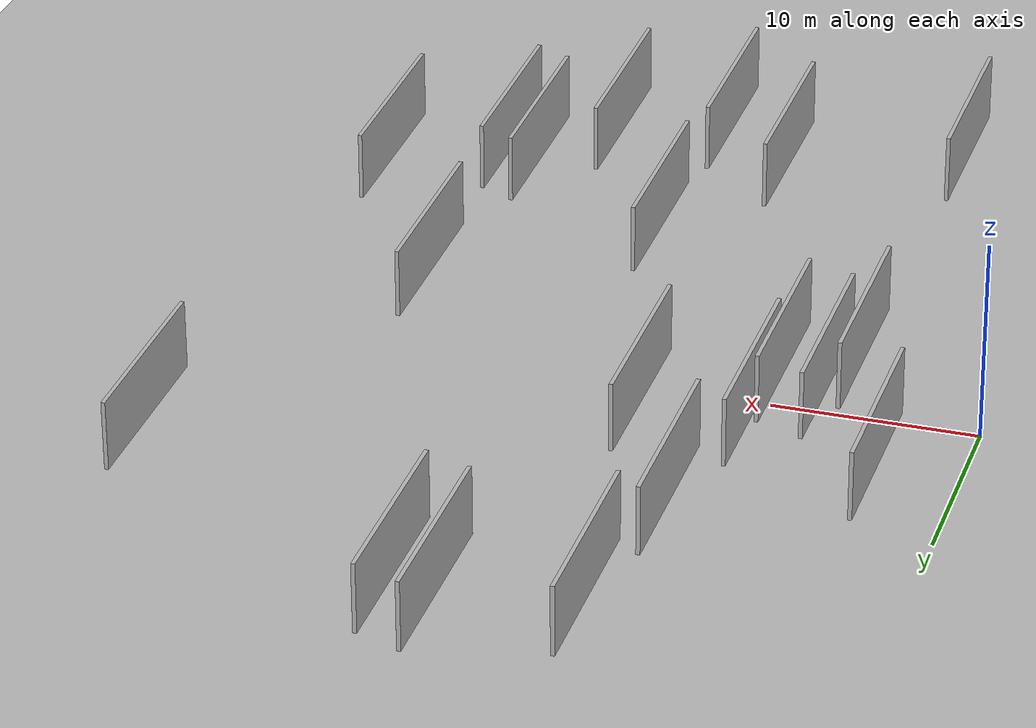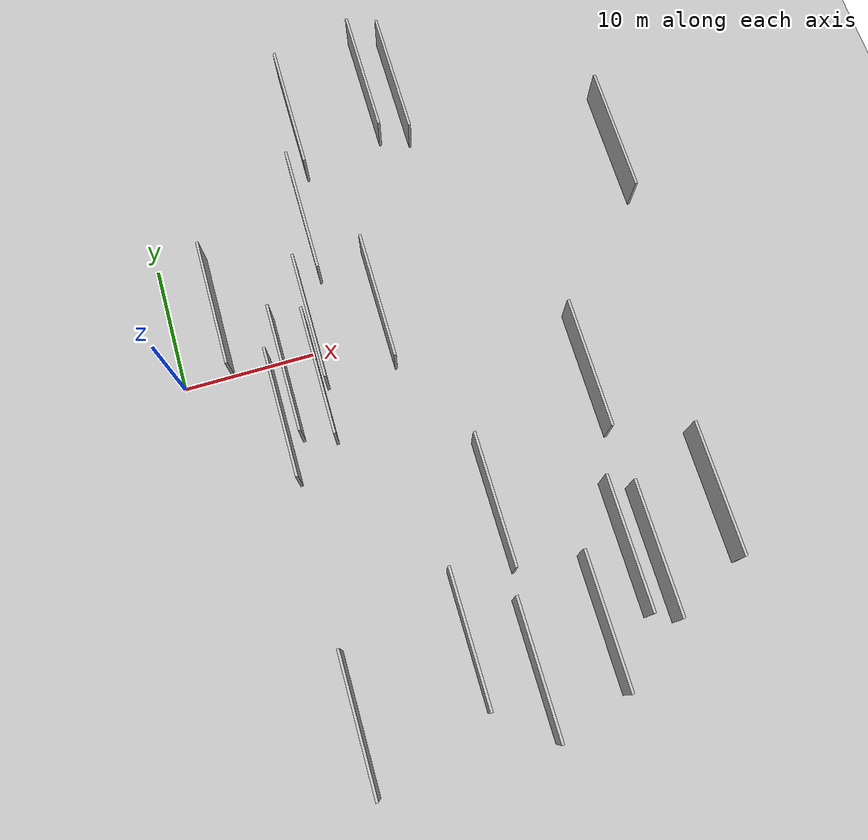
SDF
<?xml version="1.0" encoding="utf-8"?>

<sdf version="1.6">

   <world name="default">

      <gui fullscreen="0">

         <camera name="user_camera">

            <pose>-15 0 4.57585 0 0 0</pose>

            <view_controller>orbit</view_controller>

         </camera>

      </gui>

      <scene>

         <sky>

           <clouds>

             <speed>12</speed>

           </clouds>

         </sky>

         <ambient>0.4 0.4 0.4 1</ambient>

         <background>0.7 0.7 0.7 1</background>

         <shadows>1</shadows>

      </scene>

      <gravity>0 0 -9.8066</gravity>

      <magnetic_field>6e-06 2.3e-05 -4.2e-05</magnetic_field>

      <physics default="0" name="default_physics" type="ode">

         <ode>

            <solver>

               <type>quick</type>

               <iters>10</iters>

               <sor>1.0</sor>

               <use_dynamic_moi_rescaling>0</use_dynamic_moi_rescaling>

            </solver>

            <constraints>

               <cfm>0</cfm>

               <erp>0.2</erp>

               <contact_max_correcting_vel>100</contact_max_correcting_vel>

               <contact_surface_layer>0.001</contact_surface_layer>

            </constraints>

         </ode>

         <max_step_size>0.004</max_step_size>

         <real_time_factor>1</real_time_factor>

         <real_time_update_rate>250</real_time_update_rate>

      </physics>

      <light name="sun" type="directional">

         <cast_shadows>1</cast_shadows>

         <pose>0 0 10 0 0 0</pose>

         <diffuse>0.8 0.8 0.8 1</diffuse>

         <specular>0.2 0.2 0.2 1</specular>

         <attenuation>

            <range>1000</range>

            <constant>0.9</constant>

            <linear>0.01</linear>

            <quadratic>0.001</quadratic>

         </attenuation>

         <direction>-0.5 0.1 -0.9</direction>

      </light>

      <include>

         <name>ground_plane_1</name>

         <uri>model://HANNAS_ground_plane</uri>

         <pose>0 0 0  0 0 0</pose>

      </include>

      <include>

         <name>ground_plane_2</name>

         <uri>model://HANNAS_ground_plane</uri>

         <pose>100 0 0  0 0 0</pose>

      </include>

      <model name="HANNAS_wall_1">

         <static>1</static>

         <pose frame="">24.5667 -25.2155 0.0 0.000000 0.000000 1.570796</pose>

         <link name="link">

            <pose frame="">0 0 2.00 0 0 0</pose>

            <collision name="collision">

               <geometry>

                  <box>

                     <size>10.00 0.2 4.00</size>

                  </box>

               </geometry>

               <max_contacts>10</max_contacts>

               <surface>

                  <contact>

                     <ode/>

                  </contact>

                  <bounce/>

                  <friction>

                     <torsional>

                        <ode/>

                     </torsional>

                     <ode/>

                  </friction>

               </surface>

            </collision>

            <visual name="visual">

               <cast_shadows>0</cast_shadows>

               <geometry>

                  <box>

                     <size>10.00 0.2 4.00</size>

                  </box>

               </geometry>

               <material>

                  <script>

                     <uri>model://HANNAS_wall/materials/scripts</uri>

                     <uri>model://HANNAS_wall/materials/textures</uri>

                     <name>vrc/HANNAS_wall</name>

                  </script>

               </material>

            </visual>

            <self_collide>0</self_collide>

            <enable_wind>0</enable_wind>

            <kinematic>0</kinematic>

         </link>

      </model>

      <model name="HANNAS_wall_2">

         <static>1</static>

         <pose frame="">7.7499 -1.5978 0.0 0.000000 0.000000 1.570796</pose>

         <link name="link">

            <pose frame="">0 0 2.00 0 0 0</pose>

            <collision name="collision">

               <geometry>

                  <box>

                     <size>10.00 0.2 4.00</size>

                  </box>

               </geometry>

               <max_contacts>10</max_contacts>

               <surface>

                  <contact>

                     <ode/>

                  </contact>

                  <bounce/>

                  <friction>

                     <torsional>

                        <ode/>

                     </torsional>

                     <ode/>

                  </friction>

               </surface>

            </collision>

            <visual name="visual">

               <cast_shadows>0</cast_shadows>

               <geometry>

                  <box>

                     <size>10.00 0.2 4.00</size>

                  </box>

               </geometry>

               <material>

                  <script>

                     <uri>model://HANNAS_wall/materials/scripts</uri>

                     <uri>model://HANNAS_wall/materials/textures</uri>

                     <name>vrc/HANNAS_wall</name>

                  </script>

               </material>

            </visual>

            <self_collide>0</self_collide>

            <enable_wind>0</enable_wind>

            <kinematic>0</kinematic>

         </link>

      </model>

      <model name="HANNAS_wall_3">

         <static>1</static>

         <pose frame="">10.1002 -2.4909 0.0 0.000000 0.000000 1.570796</pose>

         <link name="link">

            <pose frame="">0 0 2.00 0 0 0</pose>

            <collision name="collision">

               <geometry>

                  <box>

                     <size>10.00 0.2 4.00</size>

                  </box>

               </geometry>

               <max_contacts>10</max_contacts>

               <surface>

                  <contact>

                     <ode/>

                  </contact>

                  <bounce/>

                  <friction>

                     <torsional>

                        <ode/>

                     </torsional>

                     <ode/>

                  </friction>

               </surface>

            </collision>

            <visual name="visual">

               <cast_shadows>0</cast_shadows>

               <geometry>

                  <box>

                     <size>10.00 0.2 4.00</size>

                  </box>

               </geometry>

               <material>

                  <script>

                     <uri>model://HANNAS_wall/materials/scripts</uri>

                     <uri>model://HANNAS_wall/materials/textures</uri>

                     <name>vrc/HANNAS_wall</name>

                  </script>

               </material>

            </visual>

            <self_collide>0</self_collide>

            <enable_wind>0</enable_wind>

            <kinematic>0</kinematic>

         </link>

      </model>

      <model name="HANNAS_wall_4">

         <static>1</static>

         <pose frame="">29.5255 -21.5609 0.0 0.000000 0.000000 1.570796</pose>

         <link name="link">

            <pose frame="">0 0 2.00 0 0 0</pose>

            <collision name="collision">

               <geometry>

                  <box>

                     <size>10.00 0.2 4.00</size>

                  </box>

               </geometry>

               <max_contacts>10</max_contacts>

               <surface>

                  <contact>

                     <ode/>

                  </contact>

                  <bounce/>

                  <friction>

                     <torsional>

                        <ode/>

                     </torsional>

                     <ode/>

                  </friction>

               </surface>

            </collision>

            <visual name="visual">

               <cast_shadows>0</cast_shadows>

               <geometry>

                  <box>

                     <size>10.00 0.2 4.00</size>

                  </box>

               </geometry>

               <material>

                  <script>

                     <uri>model://HANNAS_wall/materials/scripts</uri>

                     <uri>model://HANNAS_wall/materials/textures</uri>

                     <name>vrc/HANNAS_wall</name>

                  </script>

               </material>

            </visual>

            <self_collide>0</self_collide>

            <enable_wind>0</enable_wind>

            <kinematic>0</kinematic>

         </link>

      </model>

      <model name="HANNAS_wall_5">

         <static>1</static>

         <pose frame="">6.5505 -26.9354 0.0 0.000000 0.000000 1.570796</pose>

         <link name="link">

            <pose frame="">0 0 2.00 0 0 0</pose>

            <collision name="collision">

               <geometry>

                  <box>

                     <size>10.00 0.2 4.00</size>

                  </box>

               </geometry>

               <max_contacts>10</max_contacts>

               <surface>

                  <contact>

                     <ode/>

                  </contact>

                  <bounce/>

                  <friction>

                     <torsional>

                        <ode/>

                     </torsional>

                     <ode/>

                  </friction>

               </surface>

            </collision>

            <visual name="visual">

               <cast_shadows>0</cast_shadows>

               <geometry>

                  <box>

                     <size>10.00 0.2 4.00</size>

                  </box>

               </geometry>

               <material>

                  <script>

                     <uri>model://HANNAS_wall/materials/scripts</uri>

                     <uri>model://HANNAS_wall/materials/textures</uri>

                     <name>vrc/HANNAS_wall</name>

                  </script>

               </material>

            </visual>

            <self_collide>0</self_collide>

            <enable_wind>0</enable_wind>

            <kinematic>0</kinematic>

         </link>

      </model>

      <model name="HANNAS_wall_6">

         <static>1</static>

         <pose frame="">6.7507 -4.8090 0.0 0.000000 0.000000 1.570796</pose>

         <link name="link">

            <pose frame="">0 0 2.00 0 0 0</pose>

            <collision name="collision">

               <geometry>

                  <box>

                     <size>10.00 0.2 4.00</size>

                  </box>

               </geometry>

               <max_contacts>10</max_contacts>

               <surface>

                  <contact>

                     <ode/>

                  </contact>

                  <bounce/>

                  <friction>

                     <torsional>

                        <ode/>

                     </torsional>

                     <ode/>

                  </friction>

               </surface>

            </collision>

            <visual name="visual">

               <cast_shadows>0</cast_shadows>

               <geometry>

                  <box>

                     <size>10.00 0.2 4.00</size>

                  </box>

               </geometry>

               <material>

                  <script>

                     <uri>model://HANNAS_wall/materials/scripts</uri>

                     <uri>model://HANNAS_wall/materials/textures</uri>

                     <name>vrc/HANNAS_wall</name>

                  </script>

               </material>

            </visual>

            <self_collide>0</self_collide>

            <enable_wind>0</enable_wind>

            <kinematic>0</kinematic>

         </link>

      </model>

      <model name="HANNAS_wall_7">

         <static>1</static>

         <pose frame="">22.0071 19.9481 0.0 0.000000 0.000000 1.570796</pose>

         <link name="link">

            <pose frame="">0 0 2.00 0 0 0</pose>

            <collision name="collision">

               <geometry>

                  <box>

                     <size>10.00 0.2 4.00</size>

                  </box>

               </geometry>

               <max_contacts>10</max_contacts>

               <surface>

                  <contact>

                     <ode/>

                  </contact>

                  <bounce/>

                  <friction>

                     <torsional>

                        <ode/>

                     </torsional>

                     <ode/>

                  </friction>

               </surface>

            </collision>

            <visual name="visual">

               <cast_shadows>0</cast_shadows>

               <geometry>

                  <box>

                     <size>10.00 0.2 4.00</size>

                  </box>

               </geometry>

               <material>

                  <script>

                     <uri>model://HANNAS_wall/materials/scripts</uri>

                     <uri>model://HANNAS_wall/materials/textures</uri>

                     <name>vrc/HANNAS_wall</name>

                  </script>

               </material>

            </visual>

            <self_collide>0</self_collide>

            <enable_wind>0</enable_wind>

            <kinematic>0</kinematic>

         </link>

      </model>

      <model name="HANNAS_wall_8">

         <static>1</static>

         <pose frame="">13.3429 19.2277 0.0 0.000000 0.000000 1.570796</pose>

         <link name="link">

            <pose frame="">0 0 2.00 0 0 0</pose>

            <collision name="collision">

               <geometry>

                  <box>

                     <size>10.00 0.2 4.00</size>

                  </box>

               </geometry>

               <max_contacts>10</max_contacts>

               <surface>

                  <contact>

                     <ode/>

                  </contact>

                  <bounce/>

                  <friction>

                     <torsional>

                        <ode/>

                     </torsional>

                     <ode/>

                  </friction>

               </surface>

            </collision>

            <visual name="visual">

               <cast_shadows>0</cast_shadows>

               <geometry>

                  <box>

                     <size>10.00 0.2 4.00</size>

                  </box>

               </geometry>

               <material>

                  <script>

                     <uri>model://HANNAS_wall/materials/scripts</uri>

                     <uri>model://HANNAS_wall/materials/textures</uri>

                     <name>vrc/HANNAS_wall</name>

                  </script>

               </material>

            </visual>

            <self_collide>0</self_collide>

            <enable_wind>0</enable_wind>

            <kinematic>0</kinematic>

         </link>

      </model>

      <model name="HANNAS_wall_9">

         <static>1</static>

         <pose frame="">19.1181 -26.9352 0.0 0.000000 0.000000 1.570796</pose>

         <link name="link">

            <pose frame="">0 0 2.00 0 0 0</pose>

            <collision name="collision">

               <geometry>

                  <box>

                     <size>10.00 0.2 4.00</size>

                  </box>

               </geometry>

               <max_contacts>10</max_contacts>

               <surface>

                  <contact>

                     <ode/>

                  </contact>

                  <bounce/>

                  <friction>

                     <torsional>

                        <ode/>

                     </torsional>

                     <ode/>

                  </friction>

               </surface>

            </collision>

            <visual name="visual">

               <cast_shadows>0</cast_shadows>

               <geometry>

                  <box>

                     <size>10.00 0.2 4.00</size>

                  </box>

               </geometry>

               <material>

                  <script>

                     <uri>model://HANNAS_wall/materials/scripts</uri>

                     <uri>model://HANNAS_wall/materials/textures</uri>

                     <name>vrc/HANNAS_wall</name>

                  </script>

               </material>

            </visual>

            <self_collide>0</self_collide>

            <enable_wind>0</enable_wind>

            <kinematic>0</kinematic>

         </link>

      </model>

      <model name="HANNAS_wall_10">

         <static>1</static>

         <pose frame="">35.0830 -18.7914 0.0 0.000000 0.000000 1.570796</pose>

         <link name="link">

            <pose frame="">0 0 2.00 0 0 0</pose>

            <collision name="collision">

               <geometry>

                  <box>

                     <size>10.00 0.2 4.00</size>

                  </box>

               </geometry>

               <max_contacts>10</max_contacts>

               <surface>

                  <contact>

                     <ode/>

                  </contact>

                  <bounce/>

                  <friction>

                     <torsional>

                        <ode/>

                     </torsional>

                     <ode/>

                  </friction>

               </surface>

            </collision>

            <visual name="visual">

               <cast_shadows>0</cast_shadows>

               <geometry>

                  <box>

                     <size>10.00 0.2 4.00</size>

                  </box>

               </geometry>

               <material>

                  <script>

                     <uri>model://HANNAS_wall/materials/scripts</uri>

                     <uri>model://HANNAS_wall/materials/textures</uri>

                     <name>vrc/HANNAS_wall</name>

                  </script>

               </material>

            </visual>

            <self_collide>0</self_collide>

            <enable_wind>0</enable_wind>

            <kinematic>0</kinematic>

         </link>

      </model>

      <model name="HANNAS_wall_11">

         <static>1</static>

         <pose frame="">3.8579 4.7792 0.0 0.000000 0.000000 1.570796</pose>

         <link name="link">

            <pose frame="">0 0 2.00 0 0 0</pose>

            <collision name="collision">

               <geometry>

                  <box>

                     <size>10.00 0.2 4.00</size>

                  </box>

               </geometry>

               <max_contacts>10</max_contacts>

               <surface>

                  <contact>

                     <ode/>

                  </contact>

                  <bounce/>

                  <friction>

                     <torsional>

                        <ode/>

                     </torsional>

                     <ode/>

                  </friction>

               </surface>

            </collision>

            <visual name="visual">

               <cast_shadows>0</cast_shadows>

               <geometry>

                  <box>

                     <size>10.00 0.2 4.00</size>

                  </box>

               </geometry>

               <material>

                  <script>

                     <uri>model://HANNAS_wall/materials/scripts</uri>

                     <uri>model://HANNAS_wall/materials/textures</uri>

                     <name>vrc/HANNAS_wall</name>

                  </script>

               </material>

            </visual>

            <self_collide>0</self_collide>

            <enable_wind>0</enable_wind>

            <kinematic>0</kinematic>

         </link>

      </model>

      <model name="HANNAS_wall_12">

         <static>1</static>

         <pose frame="">37.3612 10.1698 0.0 0.000000 0.000000 1.570796</pose>

         <link name="link">

            <pose frame="">0 0 2.00 0 0 0</pose>

            <collision name="collision">

               <geometry>

                  <box>

                     <size>10.00 0.2 4.00</size>

                  </box>

               </geometry>

               <max_contacts>10</max_contacts>

               <surface>

                  <contact>

                     <ode/>

                  </contact>

                  <bounce/>

                  <friction>

                     <torsional>

                        <ode/>

                     </torsional>

                     <ode/>

                  </friction>

               </surface>

            </collision>

            <visual name="visual">

               <cast_shadows>0</cast_shadows>

               <geometry>

                  <box>

                     <size>10.00 0.2 4.00</size>

                  </box>

               </geometry>

               <material>

                  <script>

                     <uri>model://HANNAS_wall/materials/scripts</uri>

                     <uri>model://HANNAS_wall/materials/textures</uri>

                     <name>vrc/HANNAS_wall</name>

                  </script>

               </material>

            </visual>

            <self_collide>0</self_collide>

            <enable_wind>0</enable_wind>

            <kinematic>0</kinematic>

         </link>

      </model>

      <model name="HANNAS_wall_13">

         <static>1</static>

         <pose frame="">15.8190 1.9647 0.0 0.000000 0.000000 1.570796</pose>

         <link name="link">

            <pose frame="">0 0 2.00 0 0 0</pose>

            <collision name="collision">

               <geometry>

                  <box>

                     <size>10.00 0.2 4.00</size>

                  </box>

               </geometry>

               <max_contacts>10</max_contacts>

               <surface>

                  <contact>

                     <ode/>

                  </contact>

                  <bounce/>

                  <friction>

                     <torsional>

                        <ode/>

                     </torsional>

                     <ode/>

                  </friction>

               </surface>

            </collision>

            <visual name="visual">

               <cast_shadows>0</cast_shadows>

               <geometry>

                  <box>

                     <size>10.00 0.2 4.00</size>

                  </box>

               </geometry>

               <material>

                  <script>

                     <uri>model://HANNAS_wall/materials/scripts</uri>

                     <uri>model://HANNAS_wall/materials/textures</uri>

                     <name>vrc/HANNAS_wall</name>

                  </script>

               </material>

            </visual>

            <self_collide>0</self_collide>

            <enable_wind>0</enable_wind>

            <kinematic>0</kinematic>

         </link>

      </model>

      <model name="HANNAS_wall_14">

         <static>1</static>

         <pose frame="">10.5124 1.8065 0.0 0.000000 0.000000 1.570796</pose>

         <link name="link">

            <pose frame="">0 0 2.00 0 0 0</pose>

            <collision name="collision">

               <geometry>

                  <box>

                     <size>10.00 0.2 4.00</size>

                  </box>

               </geometry>

               <max_contacts>10</max_contacts>

               <surface>

                  <contact>

                     <ode/>

                  </contact>

                  <bounce/>

                  <friction>

                     <torsional>

                        <ode/>

                     </torsional>

                     <ode/>

                  </friction>

               </surface>

            </collision>

            <visual name="visual">

               <cast_shadows>0</cast_shadows>

               <geometry>

                  <box>

                     <size>10.00 0.2 4.00</size>

                  </box>

               </geometry>

               <material>

                  <script>

                     <uri>model://HANNAS_wall/materials/scripts</uri>

                     <uri>model://HANNAS_wall/materials/textures</uri>

                     <name>vrc/HANNAS_wall</name>

                  </script>

               </material>

            </visual>

            <self_collide>0</self_collide>

            <enable_wind>0</enable_wind>

            <kinematic>0</kinematic>

         </link>

      </model>

      <model name="HANNAS_wall_15">

         <static>1</static>

         <pose frame="">12.1225 10.3259 0.0 0.000000 0.000000 1.570796</pose>

         <link name="link">

            <pose frame="">0 0 2.00 0 0 0</pose>

            <collision name="collision">

               <geometry>

                  <box>

                     <size>10.00 0.2 4.00</size>

                  </box>

               </geometry>

               <max_contacts>10</max_contacts>

               <surface>

                  <contact>

                     <ode/>

                  </contact>

                  <bounce/>

                  <friction>

                     <torsional>

                        <ode/>

                     </torsional>

                     <ode/>

                  </friction>

               </surface>

            </collision>

            <visual name="visual">

               <cast_shadows>0</cast_shadows>

               <geometry>

                  <box>

                     <size>10.00 0.2 4.00</size>

                  </box>

               </geometry>

               <material>

                  <script>

                     <uri>model://HANNAS_wall/materials/scripts</uri>

                     <uri>model://HANNAS_wall/materials/textures</uri>

                     <name>vrc/HANNAS_wall</name>

                  </script>

               </material>

            </visual>

            <self_collide>0</self_collide>

            <enable_wind>0</enable_wind>

            <kinematic>0</kinematic>

         </link>

      </model>

      <model name="HANNAS_wall_16">

         <static>1</static>

         <pose frame="">19.6909 -15.1427 0.0 0.000000 0.000000 1.570796</pose>

         <link name="link">

            <pose frame="">0 0 2.00 0 0 0</pose>

            <collision name="collision">

               <geometry>

                  <box>

                     <size>10.00 0.2 4.00</size>

                  </box>

               </geometry>

               <max_contacts>10</max_contacts>

               <surface>

                  <contact>

                     <ode/>

                  </contact>

                  <bounce/>

                  <friction>

                     <torsional>

                        <ode/>

                     </torsional>

                     <ode/>

                  </friction>

               </surface>

            </collision>

            <visual name="visual">

               <cast_shadows>0</cast_shadows>

               <geometry>

                  <box>

                     <size>10.00 0.2 4.00</size>

                  </box>

               </geometry>

               <material>

                  <script>

                     <uri>model://HANNAS_wall/materials/scripts</uri>

                     <uri>model://HANNAS_wall/materials/textures</uri>

                     <name>vrc/HANNAS_wall</name>

                  </script>

               </material>

            </visual>

            <self_collide>0</self_collide>

            <enable_wind>0</enable_wind>

            <kinematic>0</kinematic>

         </link>

      </model>

      <model name="HANNAS_wall_17">

         <static>1</static>

         <pose frame="">27.7307 -20.6768 0.0 0.000000 0.000000 1.570796</pose>

         <link name="link">

            <pose frame="">0 0 2.00 0 0 0</pose>

            <collision name="collision">

               <geometry>

                  <box>

                     <size>10.00 0.2 4.00</size>

                  </box>

               </geometry>

               <max_contacts>10</max_contacts>

               <surface>

                  <contact>

                     <ode/>

                  </contact>

                  <bounce/>

                  <friction>

                     <torsional>

                        <ode/>

                     </torsional>

                     <ode/>

                  </friction>

               </surface>

            </collision>

            <visual name="visual">

               <cast_shadows>0</cast_shadows>

               <geometry>

                  <box>

                     <size>10.00 0.2 4.00</size>

                  </box>

               </geometry>

               <material>

                  <script>

                     <uri>model://HANNAS_wall/materials/scripts</uri>

                     <uri>model://HANNAS_wall/materials/textures</uri>

                     <name>vrc/HANNAS_wall</name>

                  </script>

               </material>

            </visual>

            <self_collide>0</self_collide>

            <enable_wind>0</enable_wind>

            <kinematic>0</kinematic>

         </link>

      </model>

      <model name="HANNAS_wall_18">

         <static>1</static>

         <pose frame="">15.2489 -23.7216 0.0 0.000000 0.000000 1.570796</pose>

         <link name="link">

            <pose frame="">0 0 2.00 0 0 0</pose>

            <collision name="collision">

               <geometry>

                  <box>

                     <size>10.00 0.2 4.00</size>

                  </box>

               </geometry>

               <max_contacts>10</max_contacts>

               <surface>

                  <contact>

                     <ode/>

                  </contact>

                  <bounce/>

                  <friction>

                     <torsional>

                        <ode/>

                     </torsional>

                     <ode/>

                  </friction>

               </surface>

            </collision>

            <visual name="visual">

               <cast_shadows>0</cast_shadows>

               <geometry>

                  <box>

                     <size>10.00 0.2 4.00</size>

                  </box>

               </geometry>

               <material>

                  <script>

                     <uri>model://HANNAS_wall/materials/scripts</uri>

                     <uri>model://HANNAS_wall/materials/textures</uri>

                     <name>vrc/HANNAS_wall</name>

                  </script>

               </material>

            </visual>

            <self_collide>0</self_collide>

            <enable_wind>0</enable_wind>

            <kinematic>0</kinematic>

         </link>

      </model>

      <model name="HANNAS_wall_19">

         <static>1</static>

         <pose frame="">19.7417 20.7468 0.0 0.000000 0.000000 1.570796</pose>

         <link name="link">

            <pose frame="">0 0 2.00 0 0 0</pose>

            <collision name="collision">

               <geometry>

                  <box>

                     <size>10.00 0.2 4.00</size>

                  </box>

               </geometry>

               <max_contacts>10</max_contacts>

               <surface>

                  <contact>

                     <ode/>

                  </contact>

                  <bounce/>

                  <friction>

                     <torsional>

                        <ode/>

                     </torsional>

                     <ode/>

                  </friction>

               </surface>

            </collision>

            <visual name="visual">

               <cast_shadows>0</cast_shadows>

               <geometry>

                  <box>

                     <size>10.00 0.2 4.00</size>

                  </box>

               </geometry>

               <material>

                  <script>

                     <uri>model://HANNAS_wall/materials/scripts</uri>

                     <uri>model://HANNAS_wall/materials/textures</uri>

                     <name>vrc/HANNAS_wall</name>

                  </script>

               </material>

            </visual>

            <self_collide>0</self_collide>

            <enable_wind>0</enable_wind>

            <kinematic>0</kinematic>

         </link>

      </model>

      <model name="HANNAS_wall_20">

         <static>1</static>

         <pose frame="">29.3044 -7.4618 0.0 0.000000 0.000000 1.570796</pose>

         <link name="link">

            <pose frame="">0 0 2.00 0 0 0</pose>

            <collision name="collision">

               <geometry>

                  <box>

                     <size>10.00 0.2 4.00</size>

                  </box>

               </geometry>

               <max_contacts>10</max_contacts>

               <surface>

                  <contact>

                     <ode/>

                  </contact>

                  <bounce/>

                  <friction>

                     <torsional>

                        <ode/>

                     </torsional>

                     <ode/>

                  </friction>

               </surface>

            </collision>

            <visual name="visual">

               <cast_shadows>0</cast_shadows>

               <geometry>

                  <box>

                     <size>10.00 0.2 4.00</size>

                  </box>

               </geometry>

               <material>

                  <script>

                     <uri>model://HANNAS_wall/materials/scripts</uri>

                     <uri>model://HANNAS_wall/materials/textures</uri>

                     <name>vrc/HANNAS_wall</name>

                  </script>

               </material>

            </visual>

            <self_collide>0</self_collide>

            <enable_wind>0</enable_wind>

            <kinematic>0</kinematic>

         </link>

      </model>

   </world>

</sdf>

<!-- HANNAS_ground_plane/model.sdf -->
<sdf version="1.4">
<model name="HANNAS_ground_plane">
  <static>true</static>
    <link name="link">
      <collision name="collision">
        <geometry>
          <plane>
            <normal>0 0 1</normal>
            <size>1000 1000</size>
          </plane>
        </geometry>
        <surface>
          <friction>
            <ode>
              <mu>100</mu>
              <mu2>50</mu2>
            </ode>
          </friction>
        </surface>
      </collision>
      <visual name="visual">
        <cast_shadows>false</cast_shadows>
        <geometry>
          <plane>
            <normal>0 0 1</normal>
            <size>1000 1000</size>
          </plane>
        </geometry>
        <material>
          <script>
            <uri>model://HANNAS_ground_plane/materials/scripts/HANNAS_ground_plane.material</uri>
	    <uri>model://HANNAS_ground_plane/materials/textures</uri>
            <name>HANNASGroundPlane/Image</name>
          </script>
        </material>
      </visual>
    </link>
  </model>
</sdf>
